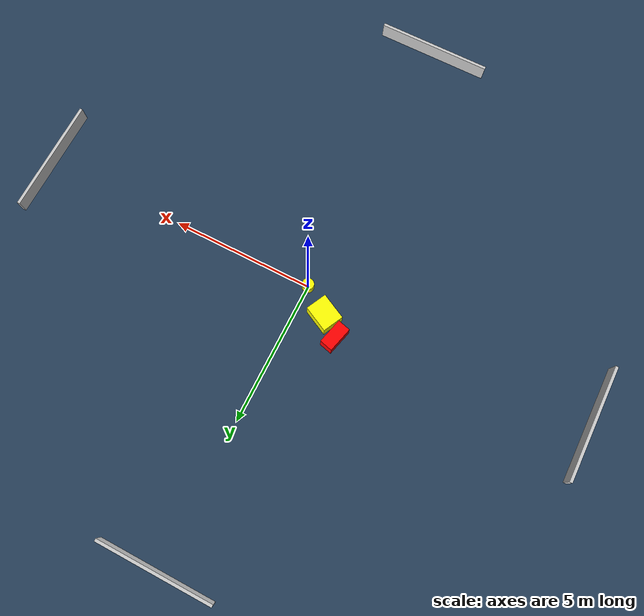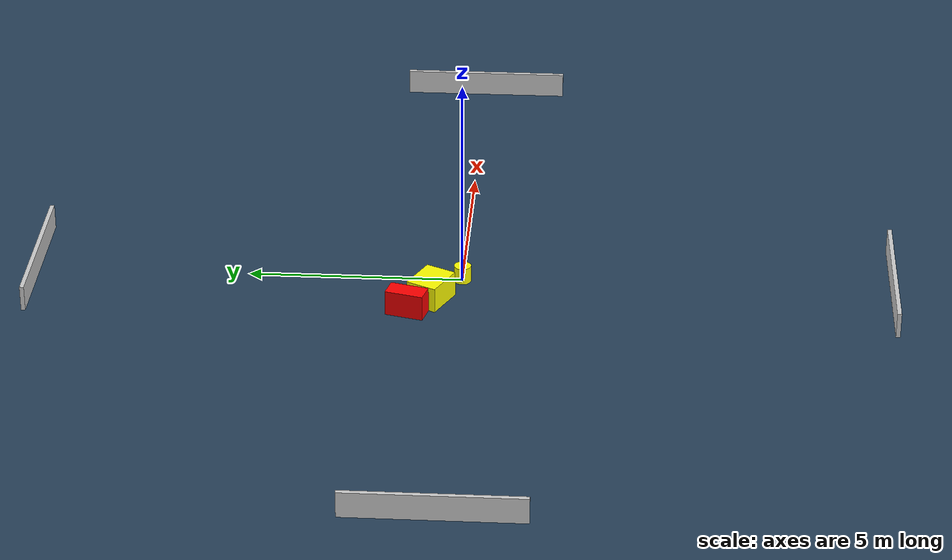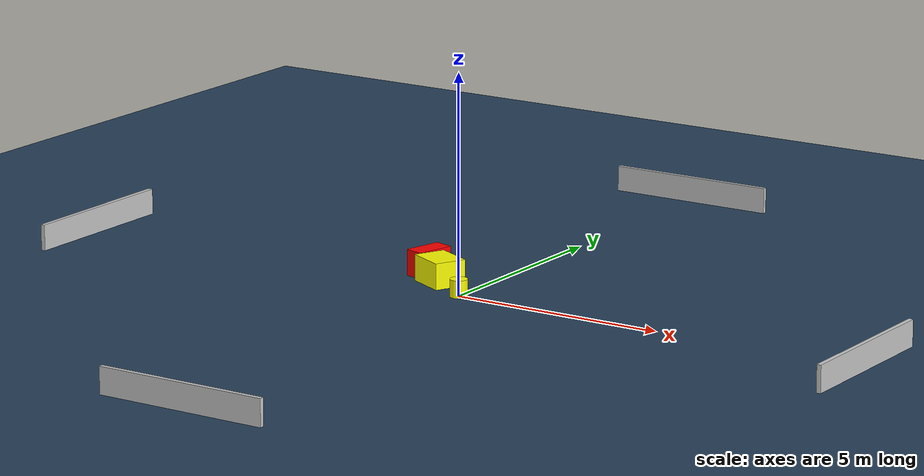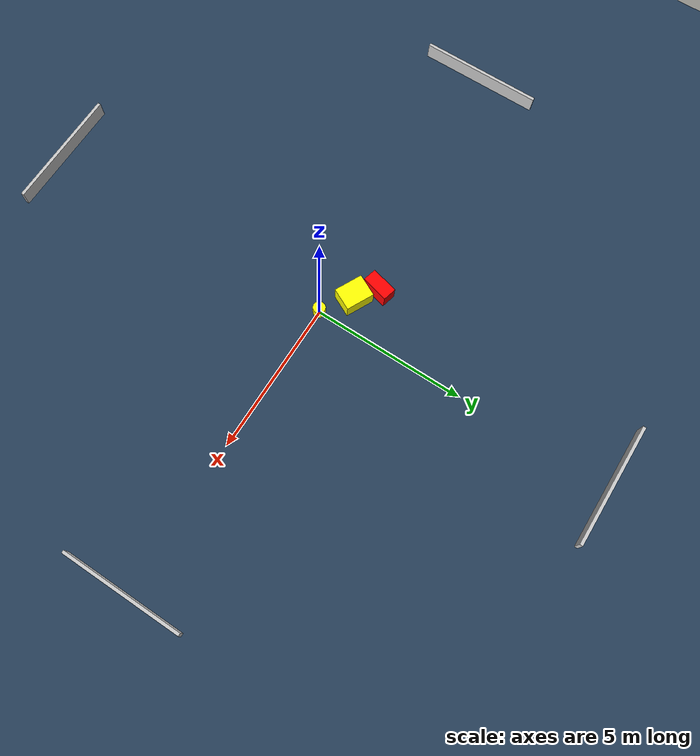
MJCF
<?xml version="1.0" ?>
<mujoco model="generated_environment">
  <option timestep="0.01" integrator="RK4" cone="elliptic"/>
  <default>
    <geom density="1"/>
  </default>
  <asset>
    <texture builtin="gradient" height="3072" name="skybox" rgb1="0.3 0.5 0.7" rgb2="0 0 0" type="skybox" width="512"/>
    <texture builtin="checker" height="300" name="groundplane" rgb1="0.2 0.3 0.4" rgb2="0.1 0.2 0.3" type="2d" width="300"/>
    <material name="groundplane" reflectance="0.2" texrepeat="5 5" texture="groundplane"/>
  </asset>
  <worldbody>
    <light dir="0 0 -1" directional="true" pos="0 0 1.5"/>
    <geom condim="3" friction="0.5 0.005 0.001" material="groundplane" name="floor" pos="0 0 0" size="0 0 0.05" type="plane"/>
    <body name="walls">
      <geom name="wall_1" condim="4" pos="-10.0 0.0 0.3" rgba="0.800000011920929 0.800000011920929 0.800000011920929 1.0" size="0.05 2.0 0.3" type="box"/>
      <geom name="wall_2" condim="4" pos="10.0 0.0 0.3" rgba="0.800000011920929 0.800000011920929 0.800000011920929 1.0" size="0.05 2.0 0.3" type="box"/>
      <geom name="wall_3" condim="4" pos="0.0 -10.0 0.3" rgba="0.800000011920929 0.800000011920929 0.800000011920929 1.0" size="2.0 0.05 0.3" type="box"/>
      <geom name="wall_4" condim="4" pos="0.0 10.0 0.3" rgba="0.800000011920929 0.800000011920929 0.800000011920929 1.0" size="2.0 0.05 0.3" type="box"/>
    </body>
    <body name="robot">
      <joint name="joint_x" type="slide" pos="0 0 0" axis="1 0 0"/>
      <joint name="joint_y" type="slide" pos="0 0 0" axis="0 1 0"/>
      <geom name="robot" type="cylinder" pos="0.0 0.0 0.2" size="0.2 0.2 0.0" mass="5.0" friction="1.0 0.005 0.0001" condim="4" rgba="1.0 1.0 0.0 1.0"/>
    </body>
    <body name="obstacle_1_movable">
      <geom name="obstacle_1_movable" condim="4" pos="-0.9432323875122419 0.6699125029668958 0.3" euler="0 0 63.59200508173413" friction="0.0 0.005 0.001" rgba="1.0 1.0 0.0 1.0" size="0.3701011261015287 0.46773598048316783 0.3" type="box" mass="0.1"/>
      <joint type="free"/>
    </body>
    <body name="obstacle_2_static">
      <geom name="obstacle_2_static" condim="4" pos="-1.58004333052413 1.1863507039510448 0.3" euler="0 0 345.3360533477558" friction="0.0 0.005 0.001" rgba="1.0 0.0 0.0 1.0" size="0.22709205624837447 0.4490866326807135 0.3" type="box"/>
    </body>
  </worldbody>
  <actuator>
    <motor name="actuator_x" joint="joint_x" gear="1" ctrlrange="-1 1"/>
    <motor name="actuator_y" joint="joint_y" gear="1" ctrlrange="-1 1"/>
  </actuator>
</mujoco>
